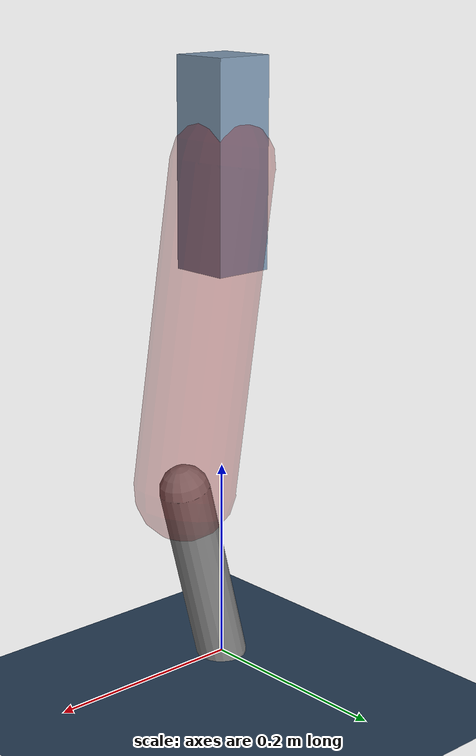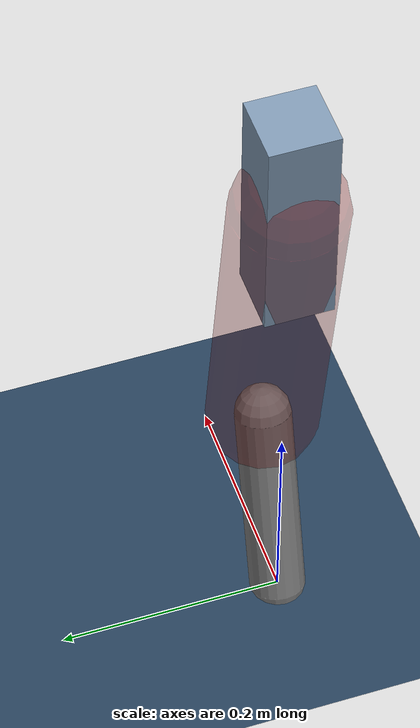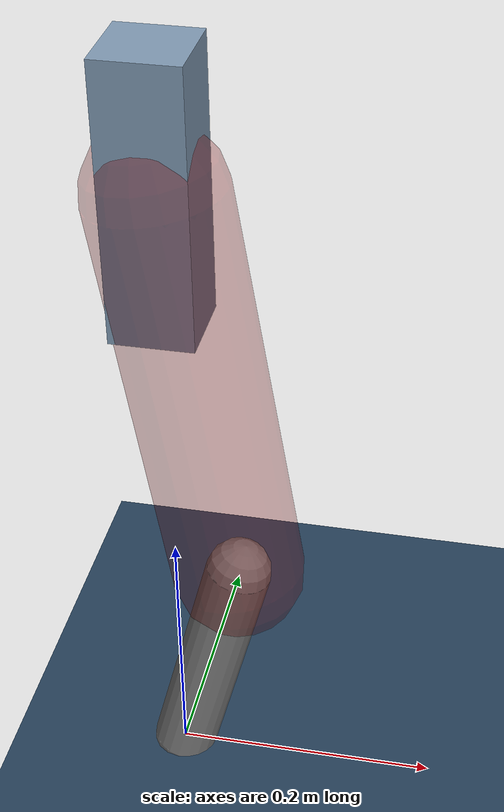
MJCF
<mujoco model="Hopper2D">
	<compiler inertiafromgeom="true" angle="radian" />
	<option timestep="0.001" integrator="implicit" cone="elliptic" solver="Newton" tolerance="1e-10" />

	<default>
		<geom contype="1" conaffinity="1" condim="3" friction="2 0.005 0.0001" solref="0.005 1" />
		<joint limited="true" damping="0.1" />
	</default>

	<asset>
		<texture name="skybox" type="skybox" builtin="gradient" rgb1=".4 .6 .8" rgb2="0 0 0" width="800" height="800" />
		<texture name="grid" type="2d" builtin="checker" rgb1=".1 .2 .3" rgb2=".2 .3 .4" width="300" height="300" mark="edge" markrgb=".2 .3 .4" />
		<material name="ground" texture="grid" texrepeat="1 1" texuniform="true" reflectance="0.1" />
		<material name="leg" rgba="0.5 0.6 0.7 1" />
	</asset>

	<worldbody>

		<geom name="floor" type="plane" size="5 5 0.25" material="ground" />

		<light directional="false" diffuse="0.8 0.8 0.8" specular="0.3 0.3 0.3" pos="0 0 2" dir="0 0 -1" />
		<light mode="targetbodycom" target="base" directional="false" diffuse="0.8 0.8 0.8" specular="0.3 0.3 0.3" pos="0 0 2" dir="0 0 -1" />

		<camera name="fixed" pos="0 -2 1" xyaxes="1 0 0 0 0 1" />
		<camera name="tracking" mode="trackcom" pos="0 -3 1" />

		<body name="root" pos="0 0 0.49734710891127776">
			<joint name="slide_x" type="slide" axis="1 0 0" range="-100 100" />
			<joint name="slide_z" type="slide" axis="0 0 1" range="0 10" />

			<body name="base" pos="0 0 0">
				<geom name="torso" type="box" size="0.03 0.03 0.1" mass="2.156" material="leg" />

				<body name="link1" pos="0 0 0" euler="0 1.416023195053433 0">
					<joint type="hinge" axis="0 -1 0" pos="0 0 0" name="hinge1" limited="true" range="-3.14 3.14" stiffness="0" damping="0.1" />
					<geom name="thigh" type="capsule" fromto="0 0 0 0.31504945105343407 0 0" size="0.05" rgba="0.5 0 0 0.3" mass="1.0296384629496154" />

					<body name="link2" pos="0.31504945105343407 0 0" euler="0 0.4100985182390637 0">
						<joint type="hinge" axis="0 -1 0" pos="0 0 0" name="hinge2" limited="true" range="-3.14 3.14" stiffness="0" damping="0.1" />
						<geom name="shank" type="capsule" fromto="0 0 0 0.19229765785784375 0 0" size="0.025" mass="0.39436789207205936" />

					</body>
				</body>
			</body>
		</body>
	</worldbody>

	<actuator>
		<motor name="torque1" joint="hinge1" ctrlrange="-57.36716409052292 57.36716409052292" ctrllimited="true" gear="1" />
		<motor name="torque2" joint="hinge2" ctrlrange="-67.64291827121622 67.64291827121622" ctrllimited="true" gear="1" />
	</actuator>
</mujoco>
